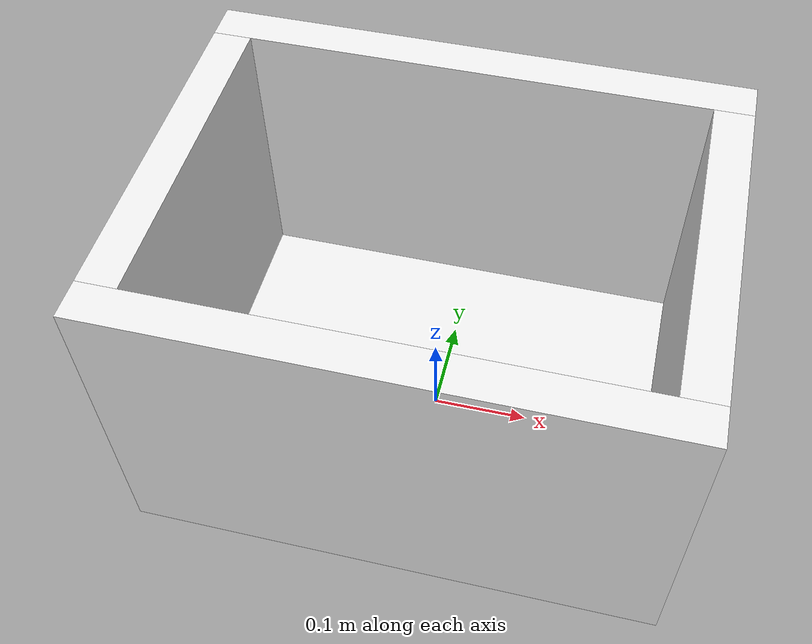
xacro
<?xml version="1.0"?>
<robot name="incubator" xmlns:xacro="http://www.ros.org/wiki/xacro">
    <xacro:property name="side_length" value="0.5334" />
    <xacro:property name="side_width" value="0.3683"/>
    <xacro:property name="side_height" value="0.3302"/>
    <xacro:property name="side_depth" value="0.0381"/>

    <xacro:macro name="wall" params="prefix length rotation">
        <link name="${prefix}_wall">
            <visual>
                <geometry>
                    <box size="${length} ${side_depth} ${side_height}"/>
                </geometry>
                    <origin xyz="0 0 ${side_height/2.0}" rpy="0 0 ${rotation}" />
                    <material name="white" />
            </visual>
            <collision>
                <geometry>
                    <box size="${length} ${side_depth} ${side_height}"/>
                </geometry>
                <origin xyz="0 0 ${side_height/2.0}" rpy="0 0 0" />
            </collision>
        </link>
    </xacro:macro>
    <xacro:macro name="thermometer" params="num">
        <link name="t${num}">
        </link>
    </xacro:macro>

    <link name="base_link" />
    <xacro:wall prefix="front" length="${side_length}" rotation="0"/>
    <xacro:wall prefix="back" length="${side_length}" rotation="0"/>
    <xacro:wall prefix="left" length="${side_width - side_depth}" rotation="-${pi/2.0}" />
    <xacro:wall prefix="right" length="${side_width - side_depth}" rotation="${pi/2.0}" />
    <xacro:thermometer num="1" />
    <xacro:thermometer num="2"/>
    <xacro:thermometer num="3"/>
    <link name="heat_bed" />
    <link name="floor">
        <visual>
            <geometry>
                <box size="${side_length - 2.0*side_depth} ${side_width - side_depth} ${side_depth}"/>
            </geometry>
                <origin xyz="0 0 ${side_depth/2.0}" rpy="0 0 0" />
                <material name="white" />
        </visual>
        <collision>
            <geometry>
                <box size="${side_length - 2.0*side_depth} ${side_width - side_depth} ${side_depth}"/>
            </geometry>
            <origin xyz="0 0 ${side_depth/2.0}" rpy="0 0 0" />
        </collision>
    </link>

    <joint name="base_link_front_wall" type="fixed">
        <parent link="base_link" />
        <child link="front_wall" />
        <origin xyz="0 ${side_width/2.0} 0" rpy="0 0 0"/>
    </joint>
    <joint name="base_link_back_wall" type="fixed">
        <parent link="base_link" />
        <child link="back_wall" />
        <origin xyz="0 -${side_width/2.0} 0" rpy="0 0 0"/>
    </joint>
    <joint name="base_link_left_wall" type="fixed">
        <parent link="base_link"/>
        <child link="left_wall"/>
        <origin xyz="-${(side_length/2.0) - (side_depth/2.0)} 0 0" rpy="0 0 0"/>
    </joint>
    <joint name="base_link_right_wall" type="fixed">
        <parent link="base_link"/>
        <child link="right_wall"/>
        <origin xyz="${(side_length/2.0) - (side_depth/2.0)} 0 0" rpy="0 0 0"/>
    </joint>
    <joint name="base_link_floor" type="fixed">
        <parent link="base_link"/>
        <child link="floor"/>
        <origin xyz="0 0 0" rpy="0 0 0" />
    </joint>
    <joint name="left_wall_t1" type="fixed">
        <parent link="left_wall"/>
        <child link="t1"/>
        <origin xyz="${side_depth/2.0+0.0254} 0 ${side_height/2.0}" rpy="0 0 0"/>
    </joint>
    <joint name="front_wall_t2" type="fixed">
        <parent link="front_wall"/>
        <child link="t2"/>
        <origin xyz="0 -${side_depth/2.0+0.0254} ${side_height/2.0}" rpy="0 0 0"/>
    </joint>
    <joint name="front_wall_t3" type="fixed">
        <parent link="front_wall"/>
        <child link="t3"/>
        <origin xyz="0 ${side_depth/2.0+0.0254} ${side_height/2.0}" rpy="0 0 0"/>
    </joint>
    <joint name="floor_heat_bed" type="fixed">
        <parent link="floor"/>
        <child link="heat_bed"/>
        <origin xyz="0 0 ${side_depth+0.01}"/>
    </joint>

</robot>
